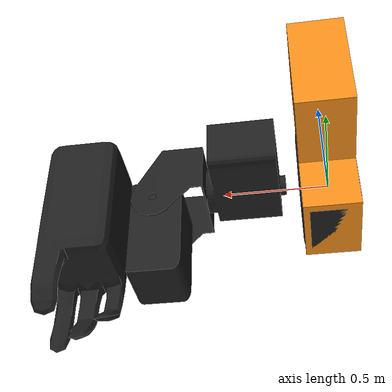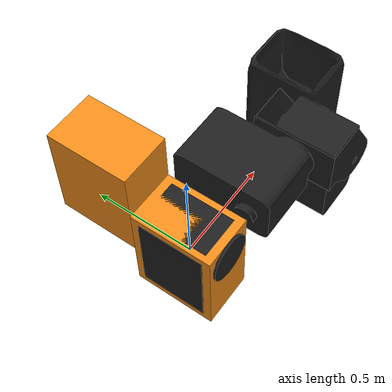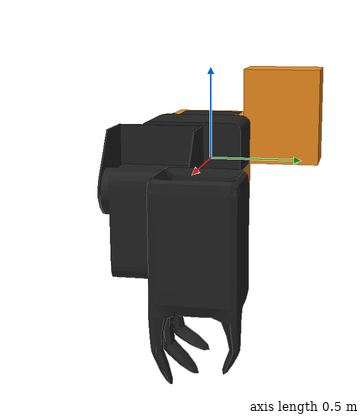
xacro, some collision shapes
<?xml version="1.0"?>
<robot name="jimmy" xmlns:xacro="http://www.ros.org/wiki/xacro">
    <xacro:property name="mass" value="1" />
    <xacro:property name="ax12_width" value="0.26" />
    <xacro:property name="ax12_height" value="0.5" />
    <xacro:property name="ax12_depth" value="0.4" />
    <xacro:property name="axel_offset" value="0.25" /> <!-- Space btw top of beam and the each joint -->
    <xacro:property name="width" value="0.1" /> <!-- Square dimensions (widthxwidth) of beams -->
    <xacro:property name="height1" value="2" /> <!-- Link 1 -->
    <xacro:property name="height2" value="1" /> <!-- Link 2 -->
    <xacro:property name="height3" value="1" /> <!-- Link 3 -->
    <xacro:property name="torso_origin">
        <origin xyz="0 0 0" rpy="0 0 0"/>
    </xacro:property>
    <xacro:property name="link2_origin">
        <origin xyz="0 0 ${ax12_height/2 - axel_offset}" rpy="0 0 0"/>
    </xacro:property>
    <xacro:property name="link3_origin">
        <origin xyz="0 0 ${ax12_height/2 - axel_offset}" rpy="0 0 0"/>
    </xacro:property>
    <xacro:property name="ax12_block">
        <box size="${ax12_width} ${ax12_depth} ${ax12_height}"/>
    </xacro:property>
    <xacro:property name="l_sho_pitch_block_origin">
        <origin xyz="0 0 ${ax12_height/2 - axel_offset}" rpy="0 0 0"/>
    </xacro:property>
    <xacro:property name="l_sho_pitch_bracket_origin">
        <origin xyz="-0.617 0.18 -0.133" rpy="0 0 0"/>
    </xacro:property>
    <xacro:property name="l_sho_roll_block_origin">
        <origin xyz="-0.879 0.025 0.0222" rpy="0 0 0"/>
    </xacro:property>
    <xacro:property name="l_sho_roll_joint_origin">
        <origin xyz="0.26 0.15 -0.155" rpy="0 0 0"/>
    </xacro:property>
    <xacro:property name="ax12_block_inertia">
        <inertia
            ixx="${mass/12.0*(ax12_width*ax12_width + ax12_height*ax12_height)}" ixy="0.0" ixz="0.0"
            iyy="${mass/12.0*(ax12_width*ax12_width + ax12_height*ax12_height)}" iyz="0.0"
            izz="${mass/12.0*(ax12_width*ax12_width + ax12_width*ax12_width)}"/>
    </xacro:property>

    <!-- Import Gazebo-customization stuff -->
    <xacro:include filename="$(find timmy2_description)/urdf/test.gazebo" />

    <link name="world" />
    <joint name="fixed" type="fixed">
        <parent link="world"/>
        <child link="torso"/>
    </joint>

    <!-- Base Link (Torso) -->
    <link name="torso">
        <collision>
            <xacro:insert_block name="torso_origin"/>
            <geometry>
                <xacro:insert_block name="ax12_block"/>
            </geometry>
        </collision>
        <visual>
            <xacro:insert_block name="torso_origin"/>
            <geometry>
                <mesh filename="package://timmy2_description/meshes/torso.dae"/>
            </geometry>
            <material name="orange"/>
        </visual>
        <inertial>
            <xacro:insert_block name="torso_origin"/>
            <mass value="${mass}"/>
            <xacro:insert_block name="ax12_block_inertia"/>
        </inertial>
    </link>

    <!-- end of Base Link -->
    <joint name="left_sho_block_mount" type="fixed">
        <parent link="torso"/>
        <child link="left_sho_pitch_block"/>
    </joint>

    <!-- Middle Link -->
    <link name="left_sho_pitch_block">
        <collision>
            <xacro:insert_block name="l_sho_pitch_block_origin"/>
            <geometry>
                <xacro:insert_block name="ax12_block"/>
            </geometry>
        </collision>
        <visual>
            <xacro:insert_block name="l_sho_pitch_block_origin"/>
            <geometry>
                <mesh filename="package://timmy2_description/meshes/l_sho_pitch.dae"/>
            </geometry>
            <material name="black"/>
        </visual>
        <inertial>
            <xacro:insert_block name="l_sho_pitch_block_origin"/>
            <mass value="${mass}"/>
            <xacro:insert_block name="ax12_block_inertia"/>
        </inertial>
    </link>

    <!-- end of Base Link -->

    <joint name="left_sho_pitch" type="continuous">
        <parent link="left_sho_pitch_block"/>
        <child link="left_sho_pitch_bracket"/>
        <origin xyz="0.6 -0.14 0.135" rpy="0 0 0"/>
        <axis xyz="1 0 0"/>
        <dynamics damping="0.7"/>
    </joint>

    <!-- Middle Link -->
    <link name="left_sho_pitch_bracket">
        <collision>
            <xacro:insert_block name="l_sho_pitch_bracket_origin"/>
            <geometry>
                <xacro:insert_block name="ax12_block"/>
            </geometry>
        </collision>
        <visual>
            <xacro:insert_block name="l_sho_pitch_bracket_origin"/>
            <geometry>
                <mesh filename="package://timmy2_description/meshes/l_sho_bracket.dae"/>
            </geometry>
            <material name="black"/>
        </visual>
        <inertial>
            <xacro:insert_block name="l_sho_pitch_bracket_origin"/>
            <mass value="${mass}"/>
            <xacro:insert_block name="ax12_block_inertia"/>
        </inertial>
    </link>

    <joint name="left_sho_roll" type="continuous">
        <parent link="left_sho_pitch_bracket"/>
        <child link="left_sho_roll_block"/>
        <xacro:insert_block name="l_sho_roll_joint_origin"/>
        <axis xyz="0 -1 0"/>
        <dynamics damping="0.7"/>
    </joint>

    <!-- Middle Link -->
    <link name="left_sho_roll_block">
        <collision>
            <xacro:insert_block name="l_sho_roll_block_origin"/>
            <geometry>
                <xacro:insert_block name="ax12_block"/>
            </geometry>
        </collision>
        <visual>
            <xacro:insert_block name="l_sho_roll_block_origin"/>
            <geometry>
                <mesh filename="package://timmy2_description/meshes/l_sho_roll.dae"/>
            </geometry>
            <material name="black"/>
        </visual>
        <inertial>
            <xacro:insert_block name="l_sho_roll_block_origin"/>
            <mass value="${mass}"/>
            <xacro:insert_block name="ax12_block_inertia"/>
        </inertial>
    </link>

    <joint name="left_elbow_bracket_joint" type="continuous">
        <parent link="left_sho_roll_block"/>
        <child link="left_elbow_bracket"/>
        <xacro:insert_block name="l_sho_roll_joint_origin"/>
        <axis xyz="0 -1 0"/>
        <dynamics damping="0.7"/>
    </joint>

    <!-- Left Elbow -->
    <link name="left_elbow_bracket">
        <collision>
            <origin xyz="0 0 0" rpy="0 0 0"/>
            <geometry>
                <xacro:insert_block name="ax12_block"/>
            </geometry>
        </collision>
        <visual>
            <origin xyz="0 0 0" rpy="0 0 0"/>
            <geometry>
                <mesh filename="package://timmy2_description/meshes/r_hand2.dae"/>
            </geometry>
            <material name="black"/>
        </visual>
        <inertial>
            <origin xyz="0 0 0" rpy="0 0 0"/>
            <mass value="${mass}"/>
            <xacro:insert_block name="ax12_block_inertia"/>
        </inertial>
    </link>

    <link name="right_elbow_block">
        <collision>
            <origin xyz="0 0 0" rpy="0 0 0"/>
            <geometry>
                <xacro:insert_block name="ax12_block"/>
            </geometry>
        </collision>
        <visual>
            <origin xyz="0 0 0" rpy="0 0 0"/>
            <geometry>
                <mesh filename="package://timmy2_description/meshes/r_forearm2.dae"/>
            </geometry>
            <material name="black"/>
        </visual>
        <inertial>
            <origin xyz="0 0 0" rpy="0 0 0"/>
            <mass value="${mass}"/>
            <xacro:insert_block name="ax12_block_inertia"/>
        </inertial>
    </link>

    <joint name="fixed3" type="fixed">
        <parent link="world"/>
        <child link="right_elbow_block"/>
    </joint>

    <!-- end of Base Link -->

    <joint name="joint2" type="continuous">
        <parent link="torso"/>
        <child link="link3"/>
        <origin xyz="0 ${ax12_depth} ${ax12_height - axel_offset}" rpy="0 0 0"/>
        <axis xyz="0 1 0"/>
        <dynamics damping="0.7"/>
    </joint>

    <!-- Top Link -->
    <link name="link3">
        <collision>
            <xacro:insert_block name="link3_origin"/>
            <geometry>
                <xacro:insert_block name="ax12_block"/>
            </geometry>
        </collision>
        <visual>
            <xacro:insert_block name="link3_origin"/>
            <geometry>
                <xacro:insert_block name="ax12_block"/>
            </geometry>
            <material name="orange"/>
        </visual>
        <inertial>
            <xacro:insert_block name="link3_origin"/>
            <mass value="${mass}"/>
            <xacro:insert_block name="ax12_block_inertia"/>
        </inertial>
    </link>

    <!-- end of Top Link -->

    <!-- Transmissions -->
    <transmission name="tran1">
        <type>transmission_interface/SimpleTransmission</type>
        <joint name="joint1">
            <hardwareInterface>hardware_interface/EffortJointInterface</hardwareInterface>
        </joint>
        <actuator name="motor1">
            <hardwareInterface>hardware_interface/EffortJointInterface</hardwareInterface>
            <mechanicalReduction>1</mechanicalReduction>
        </actuator>
    </transmission>

    <transmission name="tran2">
        <type>transmission_interface/SimpleTransmission</type>
        <joint name="joint2">
            <hardwareInterface>hardware_interface/EffortJointInterface</hardwareInterface>
        </joint>
        <actuator name="motor2">
            <hardwareInterface>hardware_interface/EffortJointInterface</hardwareInterface>
            <mechanicalReduction>1</mechanicalReduction>
        </actuator>
    </transmission>

    <!-- Connect Gazebo to ROS -->
    <!-- see test.gazebo -->
</robot>
